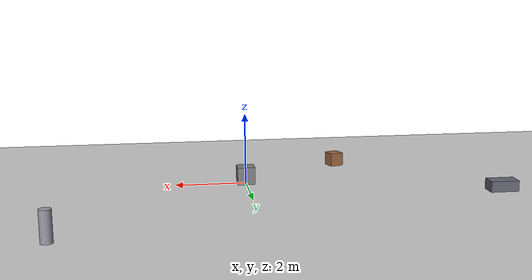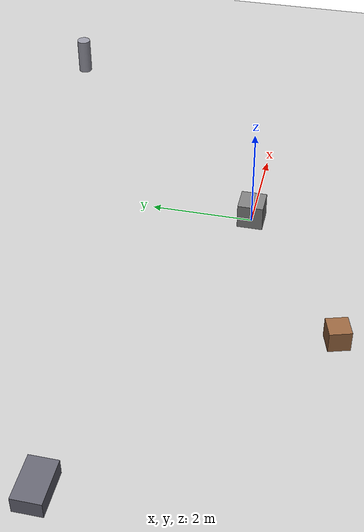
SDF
<sdf version="1.7">
 <world name="default">
  <physics name="1ms" type="ignored">
   <max_step_size>0.004</max_step_size>
   <real_time_factor>1</real_time_factor>
   <real_time_update_rate>200</real_time_update_rate>
  </physics>
  <plugin name="gz::sim::systems::Physics" filename="gz-sim-physics-system"/>
  <plugin name="gz::sim::systems::UserCommands" filename="gz-sim-user-commands-system"/>
  <plugin name="gz::sim::systems::SceneBroadcaster" filename="gz-sim-scene-broadcaster-system"/>
  <plugin name="gz::sim::systems::Contact" filename="gz-sim-contact-system"/>
  <light name="sun" type="directional">
   <cast_shadows>0</cast_shadows>
   <pose>0 0 10 0 -0 0</pose>
   <diffuse>0.8 0.8 0.8 1</diffuse>
   <specular>0.2 0.2 0.2 1</specular>
   <attenuation>
    <range>1000</range>
    <constant>0.90000000000000002</constant>
    <linear>0.01</linear>
    <quadratic>0.001</quadratic>
   </attenuation>
   <direction>-0.5 0.1 -0.9</direction>
   <spot><inner_angle>0</inner_angle><outer_angle>0</outer_angle><falloff>0</falloff></spot>
  </light>
  <gravity>0 0 -9.8</gravity>
  <magnetic_field>6e-06 2.3e-05 -4.2e-05</magnetic_field>
  <atmosphere type="adiabatic"/>
  <scene><ambient>0.4 0.4 0.4 1</ambient><background>0.7 0.7 0.7 1</background><shadows>0</shadows></scene>
  <model name="ground_plane">
   <static>1</static>
   <link name="link">
    <collision name="collision">
     <geometry><plane><normal>0 0 1</normal><size>100 100</size></plane></geometry>
    </collision>
    <visual name="visual">
     <geometry><plane><normal>0 0 1</normal><size>100 100</size></plane></geometry>
     <material>
      <ambient>0.8 0.8 0.8 1</ambient>
      <diffuse>0.8 0.8 0.8 1</diffuse>
      <specular>0.8 0.8 0.8 1</specular>
     </material>
     <plugin name="__default__" filename="__default__"/>
    </visual>
   </link>
   <plugin name="__default__" filename="__default__"/>
  </model>
  <model name="obstacle_1">
   <static>true</static>
   <pose>0 0 0.25 0 0 0</pose>
   <link name="link">
    <collision name="collision"><geometry><box><size>0.5 0.5 0.5</size></box></geometry></collision>
    <visual name="visual">
     <geometry><box><size>0.5 0.5 0.5</size></box></geometry>
     <material><ambient>0.4 0.4 0.4 1</ambient><diffuse>0.5 0.5 0.5 1</diffuse></material>
    </visual>
   </link>
  </model>
  <model name="obstacle_2">
   <static>true</static>
   <pose>-3 -2 0.2 0 0 0.3</pose>
   <link name="link">
    <collision name="collision"><geometry><box><size>0.4 0.4 0.4</size></box></geometry></collision>
    <visual name="visual">
     <geometry><box><size>0.4 0.4 0.4</size></box></geometry>
     <material><ambient>0.5 0.35 0.2 1</ambient><diffuse>0.6 0.4 0.25 1</diffuse></material>
    </visual>
   </link>
  </model>
  <model name="obstacle_3">
   <static>true</static>
   <pose>5 5 0.4 0 0 0</pose>
   <link name="link">
    <collision name="collision">
     <geometry><cylinder><radius>0.15</radius><length>0.8</length></cylinder></geometry>
    </collision>
    <visual name="visual">
     <geometry><cylinder><radius>0.15</radius><length>0.8</length></cylinder></geometry>
     <material><ambient>0.5 0.5 0.55 1</ambient><diffuse>0.6 0.6 0.65 1</diffuse></material>
    </visual>
   </link>
  </model>
  <model name="obstacle_4">
   <static>true</static>
   <pose>-7 2 0.15 0 0 0</pose>
   <link name="link">
    <collision name="collision"><geometry><box><size>0.8 0.5 0.3</size></box></geometry></collision>
    <visual name="visual">
     <geometry><box><size>0.8 0.5 0.3</size></box></geometry>
     <material><ambient>0.3 0.3 0.35 1</ambient><diffuse>0.4 0.4 0.45 1</diffuse></material>
    </visual>
   </link>
  </model>
 </world>
</sdf>
